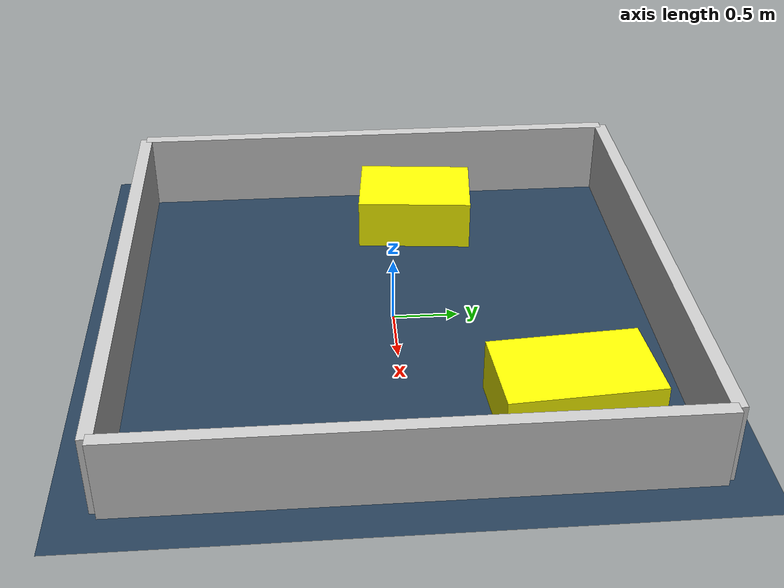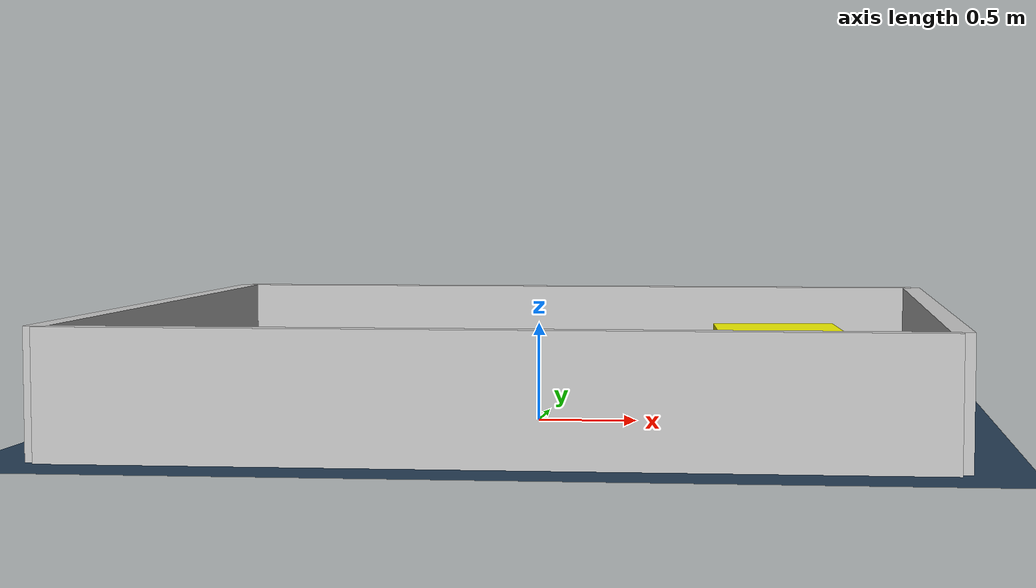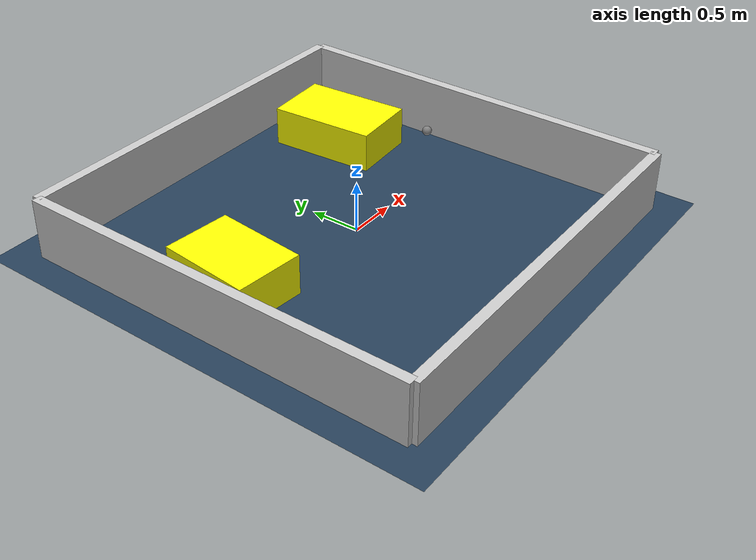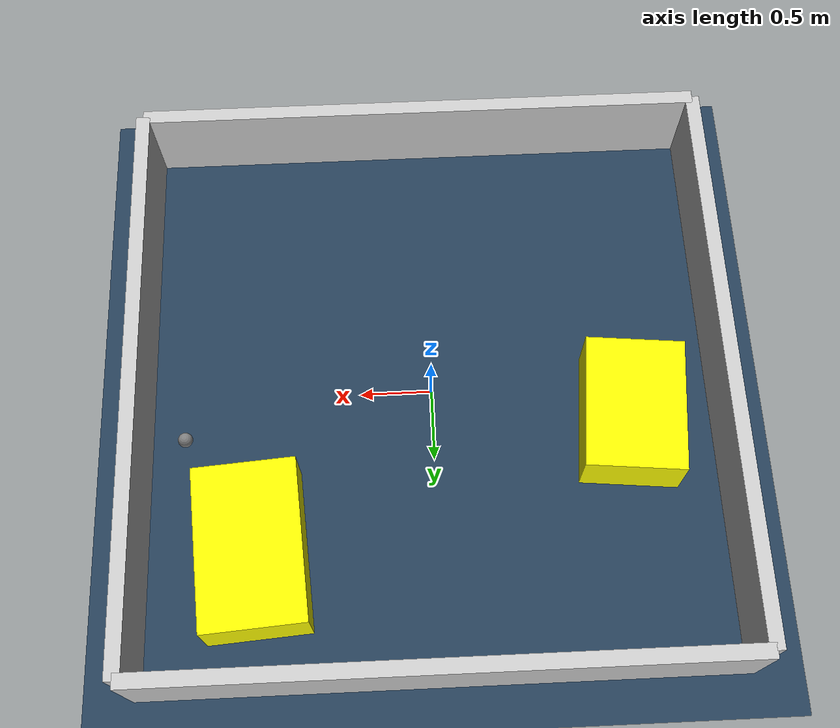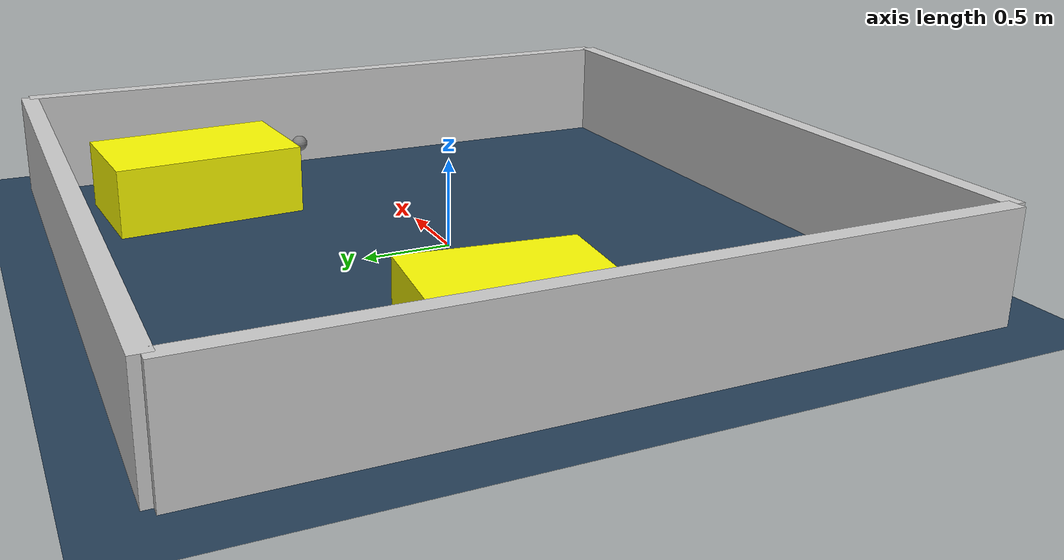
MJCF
<?xml version="1.0" ?>
<mujoco model="generated_environment">
  <option timestep="0.01" integrator="RK4" cone="elliptic"/>
  <default>
    <geom density="1"/>
  </default>
  <asset>
    <texture builtin="gradient" height="3072" rgb1="0.3 0.5 0.7" rgb2="0 0 0" type="skybox" width="512"/>
    <texture builtin="checker" height="300" mark="edge" markrgb="0.8 0.8 0.8" name="groundplane" rgb1="0.2 0.3 0.4" rgb2="0.1 0.2 0.3" type="2d" width="300"/>
    <material name="groundplane" reflectance="0.2" texrepeat="5 5" texture="groundplane" texuniform="true"/>
    <material name="robot" rgba="0.0 1.0 0.0 1"/>
  </asset>
  <worldbody>
    <light dir="0 0 -1" directional="true" pos="0 0 1.5"/>
    <geom condim="4" friction="1.0 0.005 0.001" material="groundplane" name="floor" size="0 0 0.05" type="plane"/>
    <body name="walls">
      <geom name="wall_1" condim="4" pos="-2.0 0.0 0.3" rgba="0.800000011920929 0.800000011920929 0.800000011920929 1.0" size="0.05 2.0 0.3" type="box"/>
      <geom name="wall_2" condim="4" pos="2.0 0.0 0.3" rgba="0.800000011920929 0.800000011920929 0.800000011920929 1.0" size="0.05 2.0 0.3" type="box"/>
      <geom name="wall_3" condim="4" pos="0.0 -2.0 0.3" rgba="0.800000011920929 0.800000011920929 0.800000011920929 1.0" size="2.0 0.05 0.3" type="box"/>
      <geom name="wall_4" condim="4" pos="0.0 2.0 0.3" rgba="0.800000011920929 0.800000011920929 0.800000011920929 1.0" size="2.0 0.05 0.3" type="box"/>
    </body>
    <body name="robot">
      <joint name="joint_x" type="slide" pos="0 0 0" axis="1 0 0"/>
      <joint name="joint_y" type="slide" pos="0 0 0" axis="0 1 0"/>
      <geom name="robot" type="sphere" pos="1.6891155453065685 0.35382631526789643 0.2" size="0.05" mass="5." friction="1.0 0.005 0.0001" condim="4"/>
      <site name="sensor_ball"/>
    </body>
    <body name="obstacle_1_movable">
      <geom name="obstacle_1_movable" condim="4" pos="-1.3682087339282343 0.28880365959464194 0.2" euler="0 0 354.46826158637515" friction="1.0 0.005 0.001" rgba="1 1 0 1" size="0.33945440891060974 0.46149819737316783 0.2" type="box" mass="0.1"/>
      <joint type="free"/>
    </body>
    <body name="obstacle_2_movable">
      <geom name="obstacle_2_movable" condim="4" pos="1.2273392287962726 1.1421641456276441 0.2" euler="0 0 94.22414668709308" friction="1.0 0.005 0.001" rgba="1 1 0 1" size="0.5481099068747202 0.3480877026041001 0.2" type="box" mass="0.1"/>
      <joint type="free"/>
    </body>
  </worldbody>
  <actuator>
    <motor name="actuator_x" joint="joint_x" gear="1" ctrlrange="-1 1"/>
    <motor name="actuator_y" joint="joint_y" gear="1" ctrlrange="-1 1"/>
  </actuator>
</mujoco>
